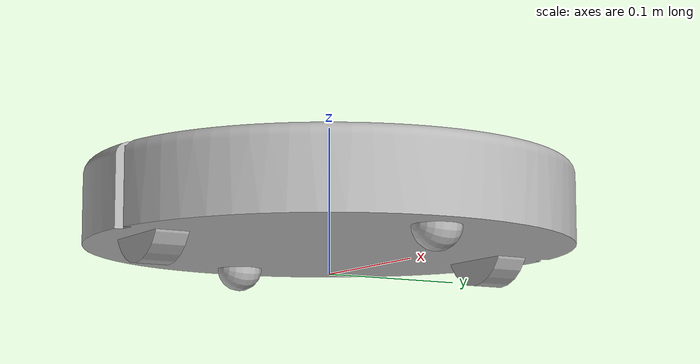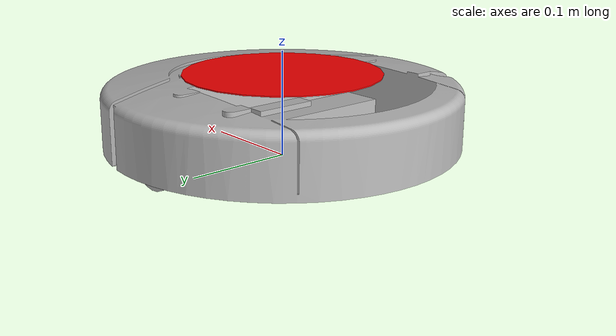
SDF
<?xml version="1.0" ?>
<sdf version="1.4">
  <model name="create">

    <!-- Base Link -->
    <link name="base_link">
      <inertial>
        <pose>0.001453 -0.000453 0.029787 0 0 0</pose>
        <inertia>
          <ixx>0.058640</ixx>
          <ixy>0.000124</ixy>
          <ixz>0.000615</ixz>
          <iyy>0.058786</iyy>
          <iyz>0.000014</iyz>
          <izz>1.532440</izz>
        </inertia>
        <mass>2.234000</mass>
      </inertial>

      <collision name="base_collision">
        <pose>0 0 0.047800 0 0 0</pose>
        <geometry>
          <mesh>
            <uri>model://create/meshes/create_body.dae</uri>
          </mesh>
        </geometry>
      </collision>
      <visual name="base_visual">
        <pose>0 0 0.047800 0 0 0</pose>
        <geometry>
          <mesh>
            <uri>model://create/meshes/create_body.dae</uri>
          </mesh>
        </geometry>
      </visual>

      <collision name="front_wheel_collision">
        <pose>0.130000 0 0.017000 0 1.570700 1.570700</pose>
        <geometry>
          <sphere>
            <radius>0.016000</radius>
          </sphere>
        </geometry>
        <surface>
          <friction>
            <ode>
              <mu>0</mu>
              <mu2>0</mu2>
              <fdir1>0 0 0</fdir1>
              <slip1>0</slip1>
              <slip2>0</slip2>
            </ode>
          </friction>
        </surface>
      </collision>
      <visual name="front_wheel_visual">
        <pose>0.130000 0 0.017000 0 1.570700 1.570700</pose>
        <geometry>
          <sphere>
            <radius>0.016000</radius>
          </sphere>
        </geometry>
      </visual>

      <collision name="rear_wheel_collision">
        <pose>-0.13 0 0.017 0 1.5707 1.5707</pose>
        <geometry>
          <sphere>
            <radius>0.016000</radius>
          </sphere>
        </geometry>
        <surface>
          <friction>
            <ode>
              <mu>0</mu>
              <mu2>0</mu2>
              <fdir1>0 0 0</fdir1>
              <slip1>0</slip1>
              <slip2>0</slip2>
            </ode>
          </friction>
        </surface>
      </collision>
      <visual name="rear_wheel_visual">
        <pose>-0.130000 0 0.017000 0 1.570700 1.570700</pose>
        <geometry>
          <sphere>
            <radius>0.01600</radius>
          </sphere>
        </geometry>
      </visual>

      <sensor name="left_cliff_sensor" type="ray">
        <pose>0.070000 0.140000 0.027000 0 1.570790 0</pose>
        <ray>
          <scan>
            <horizontal>
              <samples>1</samples>
              <resolution>1.000000</resolution>
              <min_angle>0</min_angle>
              <max_angle>0</max_angle>
            </horizontal>
          </scan>
          <range>
            <min>0.010000</min>
            <max>0.040000</max>
            <resolution>0.100000</resolution>
          </range>
        </ray>
      </sensor>

      <sensor name="leftfront_cliff_sensor" type="ray">
        <pose>0.150000 0.040000 0.027000 0 1.570790 0</pose>
        <ray>
          <scan>
            <horizontal>
              <samples>1</samples>
              <resolution>1.000000</resolution>
              <min_angle>0</min_angle>
              <max_angle>0</max_angle>
            </horizontal>
          </scan>
          <range>
            <min>0.010000</min>
            <max>0.040000</max>
            <resolution>0.100000</resolution>
          </range>
        </ray>
      </sensor>

      <sensor name="right_cliff_sensor" type="ray">
        <pose>0.070000 -0.140000 0.027000 0 1.570790 0</pose>
        <ray>
          <scan>
            <horizontal>
              <samples>1</samples>
              <resolution>1.000000</resolution>
              <min_angle>0</min_angle>
              <max_angle>0</max_angle>
            </horizontal>
          </scan>
          <range>
            <min>0.010000</min>
            <max>0.040000</max>
            <resolution>0.100000</resolution>
          </range>
        </ray>
      </sensor>

      <sensor name="rightfront_cliff_sensor" type="ray">
        <pose>0.150000 -0.040000 0.027000 0 1.570790 0</pose>
        <ray>
          <scan>
            <horizontal>
              <samples>1</samples>
              <resolution>1.000000</resolution>
              <min_angle>0</min_angle>
              <max_angle>0</max_angle>
            </horizontal>
          </scan>
          <range>
            <min>0.010000</min>
            <max>0.040000</max>
            <resolution>0.100000</resolution>
          </range>
        </ray>
      </sensor>

      <sensor name="wall_sensor" type="ray">
        <pose>0.090000 -0.120000 0.059000 0 0 -1.000000</pose>
        <ray>
          <scan>
            <horizontal>
              <samples>1</samples>
              <resolution>1.000000</resolution>
              <min_angle>0</min_angle>
              <max_angle>0</max_angle>
            </horizontal>
          </scan>
          <range>
            <min>0.016000</min>
            <max>0.040000</max>
            <resolution>0.100000</resolution>
          </range>
        </ray>
      </sensor>

      <sensor name='my_contact' type='contact'>
      	<plugin name="my_plugin" filename="libcontact.so"/>
          <contact>
            <collision>base_collision</collision>
          </contact>
          <update_rate> 5 </update_rate>
      </sensor>
    </link>
    <!-- Base Link Ends-->

    <!-- Left wheel Link -->
    <link name="left_wheel">
      <pose>0 0.130000 0.032000 0 0 0</pose>
      <inertial>
        <inertia>
          <ixx>0.007000</ixx>
          <ixy>0</ixy>
          <ixz>0</ixz>
          <iyy>0.001000</iyy>
          <iyz>0</iyz>
          <izz>0.007000</izz>
        </inertia>
        <mass>0.110000</mass>
      </inertial>
      <collision name="collision">
        <pose>0 0 0 0 1.570700 1.570700</pose>
        <geometry>
          <cylinder>
            <radius>0.033000</radius>
            <length>0.023000</length>
          </cylinder>
        </geometry>
        <surface>
          <friction>
            <ode>
              <mu>10</mu>
              <mu2>10</mu2>
              <fdir1>0 0 0</fdir1>
              <slip1>0</slip1>
              <slip2>0</slip2>
            </ode>
          </friction>
        </surface>
      </collision>
      <visual name="visual">
        <pose>0 0 0 0 1.570700 1.570700</pose>
        <geometry>
          <cylinder>
            <radius>0.033000</radius>
            <length>0.023000</length>
          </cylinder>
        </geometry>
      </visual>
    </link>

    <link name="right_wheel">
      <pose>0 -0.130000 0.032000 0 0 0</pose>
      <inertial>
        <inertia>
          <ixx>0.007000</ixx>
          <ixy>0</ixy>
          <ixz>0</ixz>
          <iyy>0.001000</iyy>
          <iyz>0</iyz>
          <izz>0.007000</izz>
        </inertia>
        <mass>0.110000</mass>
      </inertial>
      <collision name="collision">
        <pose>0 0 0 0 1.570700 1.570700</pose>
        <geometry>
          <cylinder>
            <radius>0.033000</radius>
            <length>0.023000</length>
          </cylinder>
        </geometry>
        <surface>
          <friction>
            <ode>
              <mu>10</mu>
              <mu2>10</mu2>
              <fdir1>0 0 0</fdir1>
              <slip1>0</slip1>
              <slip2>0</slip2>
            </ode>
          </friction>
        </surface>
      </collision>
      <visual name="visual">
        <pose>0 0 0 0 1.570700 1.570700</pose>
        <geometry>
          <cylinder>
            <radius>0.033000</radius>
            <length>0.023000</length>
          </cylinder>
        </geometry>
      </visual>
    </link>

    <link name="top_sensor">
        <pose>0 0 0.08 0 0 0</pose>
        <collision name="top_collision">
          <geometry>
            <cylinder>
              <radius>0.125</radius>
              <length>0.1</length>
            </cylinder>
          </geometry>
        </collision>
        <visual name="visual">
          <geometry>
            <cylinder>
              <radius>0.093</radius>
              <length>0.001</length>
            </cylinder>
          </geometry>
          <material>
            <ambient>1 0 0 1</ambient>
            <diffuse>1 0 0 1</diffuse>
            <specular>0.1 0.1 0.1 1</specular>
            <emissive>0 0 0 0</emissive>
          </material>
        </visual>
        <sensor name='my_contact_top' type='contact'>
        <plugin name="my_plugin" filename="libcontact.so"/>
          <contact>
            <collision>top_collision</collision>
          </contact>
          <update_rate> 5 </update_rate>
      </sensor>
      </link>

    <joint name="left_wheel" type="revolute">
      <parent>base_link</parent>
      <child>left_wheel</child>
      <axis>
        <xyz>0 1 0</xyz>
      </axis>
    </joint>

    <joint name="right_wheel" type="revolute">
      <parent>base_link</parent>
      <child>right_wheel</child>
      <axis>
        <xyz>0 1 0</xyz>
      </axis>
    </joint>

    <joint name="top_sensor_joint" type="revolute">
      <parent>base_link</parent>
      <child>top_sensor</child>
      <axis>
        <xyz>1 0 0</xyz>
        <limit>
          <upper>0</upper>
          <lower>0</lower>
        </limit>
      </axis>
    </joint>

   <plugin name="differential_drive_controller" filename="libgazebo_ros_diff_drive.so">
      <alwaysOn>true</alwaysOn>
      <updateRate>200</updateRate>
      <leftJoint>left_wheel</leftJoint>
      <rightJoint>right_wheel</rightJoint>
      <wheelSeparation>0.26</wheelSeparation>
      <wheelDiameter>0.066000</wheelDiameter>
      <torque>2</torque>
      <commandTopic>cmd_vel</commandTopic>
      <odometryTopic>odom</odometryTopic>
      <odometryFrame>odom</odometryFrame>
      <robotBaseFrame>base_link</robotBaseFrame>
      <legacyMode>false</legacyMode>
      <publishWheelTF>true</publishWheelTF>
      <publishWheelJointState>true</publishWheelJointState>
      <wheelAcceleration>0</wheelAcceleration>
      <wheelTorque>60</wheelTorque>
      <odometrySource>world</odometrySource>
      <publishTf>true</publishTf>
   </plugin>

   <plugin name="imu_plugin" filename="libgazebo_ros_imu.so">
      <alwaysOn>true</alwaysOn>
      <frameName>base_link</frameName>
      <bodyName>base_link</bodyName>
      <topicName>imu</topicName>
      <serviceName>imu_service</serviceName>
      <gaussianNoise>0.0</gaussianNoise>
      <updateRate>200.0</updateRate>
    </plugin>

  </model>

</sdf>
